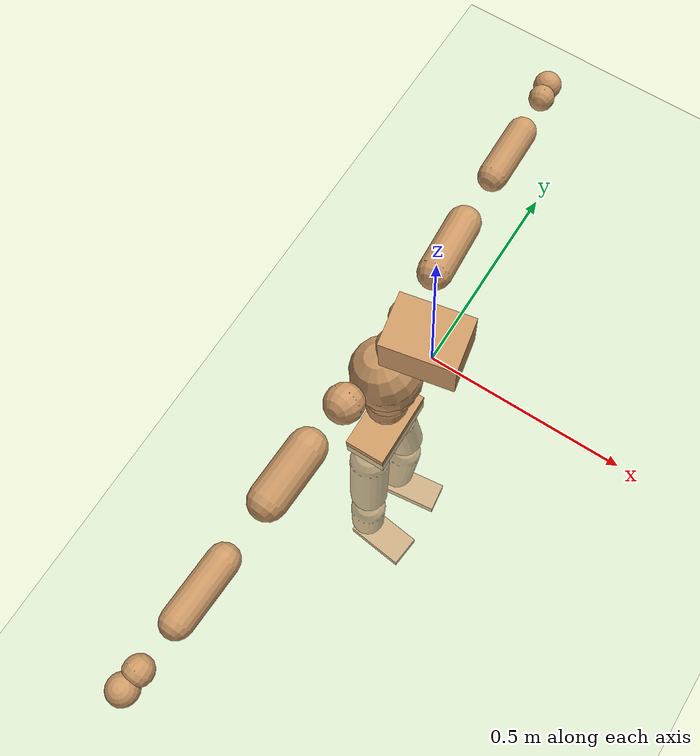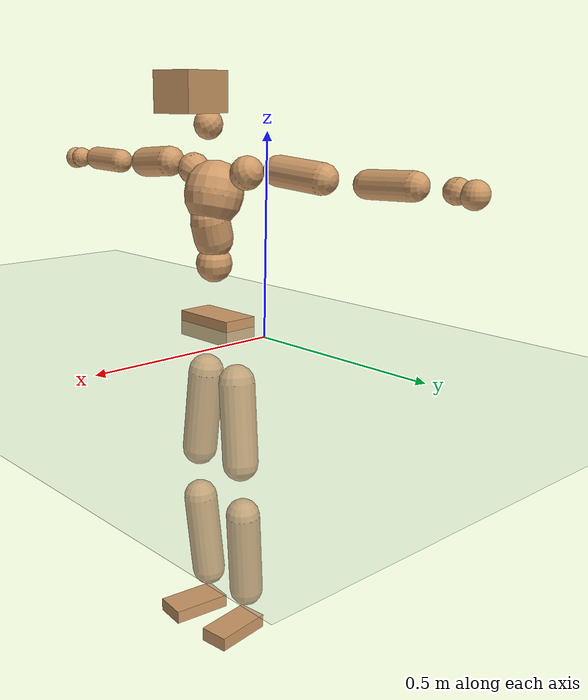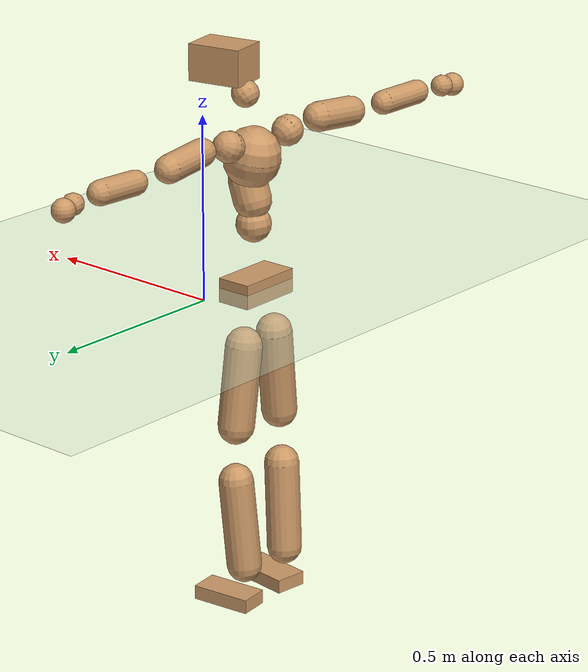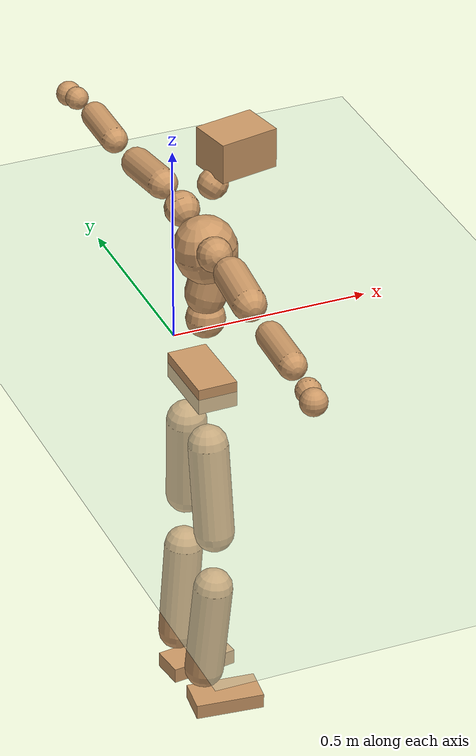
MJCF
<mujoco model="humanoid">
  <compiler coordinate="local" angle="radian"/>
  <default>
    <joint damping="0.0" armature="0.01" stiffness="0.0" limited="true"/>
    <geom conaffinity="1" condim="3" contype="7" margin="0.001" rgba="0.8 0.6 .4 1"/>
  </default>
  <asset>
    <texture type="skybox" builtin="gradient" rgb1=".4 .5 .6" rgb2="0 0 0" width="100" height="100"/>
    <texture builtin="flat" height="1278" mark="cross" markrgb="1 1 1" name="texgeom" random="0.01" rgb1="0.8 0.6 0.4" rgb2="0.8 0.6 0.4" type="cube" width="127"/>
    <texture builtin="checker" height="100" name="texplane" rgb1="0 0 0" rgb2="0.8 0.8 0.8" type="2d" width="100"/>
    <material name="MatPlane" reflectance="0.5" shininess="1" specular="1" texrepeat="60 60" texture="texplane"/>
    <material name="geom" texture="texgeom" texuniform="true"/>
  </asset>
  <worldbody>
    <light cutoff="100" diffuse="1 1 1" dir="-0 0 -1.3" directional="true" exponent="1" pos="0 0 1.3" specular=".1 .1 .1"/>
    <geom conaffinity="1" condim="3" name="floor" pos="0 0 0" rgba="0.8 0.9 0.8 1" size="100 100 .2" type="plane" material="MatPlane"/>
    <body name="Pelvis" pos="-0.0001 -0.1947 0.0031">
      <freejoint name="Pelvis"/>
      <geom type="box" contype="1" conaffinity="1" density="5359.374902" pos="-0.0074 -0.0001 -0.0113" size="0.0491 0.0921 0.0332" quat="1.0000 0.0000 0.0000 0.0088" name="Pelvis"/>
      <body name="L_Hip" pos="-0.0237 0.055 -0.0807">
        <joint name="L_Hip_x" type="hinge" pos="0 0 0" axis="1 0 0" stiffness="1600" damping="160" armature="0.02" range="-180.0000 180.0000"/>
        <joint name="L_Hip_y" type="hinge" pos="0 0 0" axis="0 1 0" stiffness="1600" damping="160" armature="0.02" range="-180.0000 180.0000"/>
        <joint name="L_Hip_z" type="hinge" pos="0 0 0" axis="0 0 1" stiffness="1600" damping="160" armature="0.02" range="-180.0000 180.0000"/>
        <geom type="capsule" contype="1" conaffinity="1" density="2040.816327" size="0.0496" fromto="0.0023 0.0086 -0.0791 0.0090 0.0329 -0.3041" name="L_Hip"/>
        <body name="L_Knee" pos="0.0113 0.0415 -0.3832">
          <joint name="L_Knee_x" type="hinge" pos="0 0 0" axis="1 0 0" stiffness="1600" damping="160" armature="0.02" range="-180.0000 180.0000"/>
          <joint name="L_Knee_y" type="hinge" pos="0 0 0" axis="0 1 0" stiffness="1600" damping="160" armature="0.02" range="-180.0000 180.0000"/>
          <joint name="L_Knee_z" type="hinge" pos="0 0 0" axis="0 0 1" stiffness="1600" damping="160" armature="0.02" range="-180.0000 180.0000"/>
          <geom type="capsule" contype="1" conaffinity="1" density="1234.567901" size="0.0475" fromto="-0.0069 -0.0027 -0.0772 -0.0285 -0.0112 -0.3210" name="L_Knee"/>
          <body name="L_Ankle" pos="-0.0353 -0.0139 -0.3982">
            <joint name="L_Ankle_x" type="hinge" pos="0 0 0" axis="1 0 0" stiffness="1600" damping="160" armature="0.02" range="-180.0000 180.0000"/>
            <joint name="L_Ankle_y" type="hinge" pos="0 0 0" axis="0 1 0" stiffness="1600" damping="160" armature="0.02" range="-180.0000 180.0000"/>
            <joint name="L_Ankle_z" type="hinge" pos="0 0 0" axis="0 0 1" stiffness="1600" damping="160" armature="0.02" range="-180.0000 180.0000"/>
            <geom type="box" contype="1" conaffinity="1" density="999.999977" pos="0.0598 0.0074 -0.0277" size="0.0843 0.0413 0.0195" quat="0.9981 0.0000 0.0000 0.0618" name="L_Ankle"/>
            <body name="L_Toe" pos="0.1196 0.0149 -0.0553">
              <joint name="L_Toe_x" type="hinge" pos="0 0 0" axis="1 0 0" stiffness="1000" damping="100" armature="0.02" range="-180.0000 180.0000"/>
              <joint name="L_Toe_y" type="hinge" pos="0 0 0" axis="0 1 0" stiffness="1000" damping="100" armature="0.02" range="-180.0000 180.0000"/>
              <joint name="L_Toe_z" type="hinge" pos="0 0 0" axis="0 0 1" stiffness="1000" damping="100" armature="0.02" range="-180.0000 180.0000"/>
              <geom type="box" contype="1" conaffinity="1" density="9129540.949962" pos="0.0000 0.0000 0.0293" size="0.0008 0.0021 0.0011" quat="0.9976 0.0000 0.0000 0.0689" name="L_Toe"/>
            </body>
          </body>
        </body>
      </body>
      <body name="R_Hip" pos="-0.0195 -0.0526 -0.0773">
        <joint name="R_Hip_x" type="hinge" pos="0 0 0" axis="1 0 0" stiffness="1600" damping="160" armature="0.02" range="-180.0000 180.0000"/>
        <joint name="R_Hip_y" type="hinge" pos="0 0 0" axis="0 1 0" stiffness="1600" damping="160" armature="0.02" range="-180.0000 180.0000"/>
        <joint name="R_Hip_z" type="hinge" pos="0 0 0" axis="0 0 1" stiffness="1600" damping="160" armature="0.02" range="-180.0000 180.0000"/>
        <geom type="capsule" contype="1" conaffinity="1" density="2040.816327" size="0.049" fromto="0.0014 -0.0089 -0.0785 0.0056 -0.0356 -0.3138" name="R_Hip"/>
        <body name="R_Knee" pos="0.007 -0.0445 -0.3923">
          <joint name="R_Knee_x" type="hinge" pos="0 0 0" axis="1 0 0" stiffness="1600" damping="160" armature="0.02" range="-180.0000 180.0000"/>
          <joint name="R_Knee_y" type="hinge" pos="0 0 0" axis="0 1 0" stiffness="1600" damping="160" armature="0.02" range="-180.0000 180.0000"/>
          <joint name="R_Knee_z" type="hinge" pos="0 0 0" axis="0 0 1" stiffness="1600" damping="160" armature="0.02" range="-180.0000 180.0000"/>
          <geom type="capsule" contype="1" conaffinity="1" density="1234.567901" size="0.0482" fromto="-0.0065 0.0036 -0.0779 -0.0267 0.0146 -0.3190" name="R_Knee"/>
          <body name="R_Ankle" pos="-0.0332 0.0181 -0.3969">
            <joint name="R_Ankle_x" type="hinge" pos="0 0 0" axis="1 0 0" stiffness="1600" damping="160" armature="0.02" range="-180.0000 180.0000"/>
            <joint name="R_Ankle_y" type="hinge" pos="0 0 0" axis="0 1 0" stiffness="1600" damping="160" armature="0.02" range="-180.0000 180.0000"/>
            <joint name="R_Ankle_z" type="hinge" pos="0 0 0" axis="0 0 1" stiffness="1600" damping="160" armature="0.02" range="-180.0000 180.0000"/>
            <geom type="box" contype="1" conaffinity="1" density="999.99994" pos="0.0612 -0.0068 -0.0223" size="0.0854 0.0456 0.0189" quat="0.9985 0.0000 0.0000 -0.0554" name="R_Ankle"/>
            <body name="R_Toe" pos="0.1223 -0.0136 -0.0447">
              <joint name="R_Toe_x" type="hinge" pos="0 0 0" axis="1 0 0" stiffness="1000" damping="100" armature="0.02" range="-180.0000 180.0000"/>
              <joint name="R_Toe_y" type="hinge" pos="0 0 0" axis="0 1 0" stiffness="1000" damping="100" armature="0.02" range="-180.0000 180.0000"/>
              <joint name="R_Toe_z" type="hinge" pos="0 0 0" axis="0 0 1" stiffness="1000" damping="100" armature="0.02" range="-180.0000 180.0000"/>
              <geom type="box" contype="1" conaffinity="1" density="8870257.658717" pos="0.0000 0.0000 0.0253" size="0.0008 0.0022 0.0011" quat="0.9989 0.0000 0.0000 -0.0465" name="R_Toe"/>
            </body>
          </body>
        </body>
      </body>
      <body name="Torso" pos="-0.0014 -0.0033 0.0905">
        <joint name="Torso_x" type="hinge" pos="0 0 0" axis="1 0 0" stiffness="2000" damping="200" armature="0.02" range="-180.0000 180.0000"/>
        <joint name="Torso_y" type="hinge" pos="0 0 0" axis="0 1 0" stiffness="2000" damping="200" armature="0.02" range="-180.0000 180.0000"/>
        <joint name="Torso_z" type="hinge" pos="0 0 0" axis="0 0 1" stiffness="2000" damping="200" armature="0.02" range="-180.0000 180.0000"/>
        <geom type="capsule" contype="1" conaffinity="1" density="2040.816327" size="0.0478" fromto="0.0028 0.0020 0.0655 0.0029 0.0021 0.0675" name="Torso"/>
        <body name="Spine" pos="0.0056 0.0041 0.1331">
          <joint name="Spine_x" type="hinge" pos="0 0 0" axis="1 0 0" stiffness="2000" damping="200" armature="0.02" range="-180.0000 180.0000"/>
          <joint name="Spine_y" type="hinge" pos="0 0 0" axis="0 1 0" stiffness="2000" damping="200" armature="0.02" range="-180.0000 180.0000"/>
          <joint name="Spine_z" type="hinge" pos="0 0 0" axis="0 0 1" stiffness="2000" damping="200" armature="0.02" range="-180.0000 180.0000"/>
          <geom type="capsule" contype="1" conaffinity="1" density="2040.816327" size="0.0515" fromto="0.0147 0.0023 0.0493 -0.0003 -0.0000 -0.0009" name="Spine"/>
          <body name="Chest" pos="0.0144 0.0022 0.0484">
            <joint name="Chest_x" type="hinge" pos="0 0 0" axis="1 0 0" stiffness="2000" damping="200" armature="0.02" range="-180.0000 180.0000"/>
            <joint name="Chest_y" type="hinge" pos="0 0 0" axis="0 1 0" stiffness="2000" damping="200" armature="0.02" range="-180.0000 180.0000"/>
            <joint name="Chest_z" type="hinge" pos="0 0 0" axis="0 0 1" stiffness="2000" damping="200" armature="0.02" range="-180.0000 180.0000"/>
            <geom type="capsule" contype="1" conaffinity="1" density="2040.816327" size="0.0764" fromto="-0.0169 -0.0010 0.0745 -0.0139 -0.0008 0.0612" name="Chest"/>
            <body name="Neck" pos="-0.0257 -0.0024 0.1988">
              <joint name="Neck_x" type="hinge" pos="0 0 0" axis="1 0 0" stiffness="1000" damping="100" armature="0.02" range="-180.0000 180.0000"/>
              <joint name="Neck_y" type="hinge" pos="0 0 0" axis="0 1 0" stiffness="1000" damping="100" armature="0.02" range="-180.0000 180.0000"/>
              <joint name="Neck_z" type="hinge" pos="0 0 0" axis="0 0 1" stiffness="1000" damping="100" armature="0.02" range="-180.0000 180.0000"/>
              <geom type="capsule" contype="1" conaffinity="1" density="1000" size="0.0366" fromto="0.0303 0.0052 0.0372 0.0316 0.0054 0.0388" name="Neck"/>
              <body name="Head" pos="0.0619 0.0107 0.076">
                <joint name="Head_x" type="hinge" pos="0 0 0" axis="1 0 0" stiffness="1000" damping="100" armature="0.02" range="-180.0000 180.0000"/>
                <joint name="Head_y" type="hinge" pos="0 0 0" axis="0 1 0" stiffness="1000" damping="100" armature="0.02" range="-180.0000 180.0000"/>
                <joint name="Head_z" type="hinge" pos="0 0 0" axis="0 0 1" stiffness="1000" damping="100" armature="0.02" range="-180.0000 180.0000"/>
                <geom type="box" contype="1" conaffinity="1" density="2250.000222" pos="0.0320 0.0063 0.0390" size="0.074 0.0548 0.0495" quat="0.9952 0.0000 0.0000 0.0977" name="Head"/>
              </body>
            </body>
            <body name="L_Thorax" pos="-0.0304 0.0659 0.1061">
              <joint name="L_Thorax_x" type="hinge" pos="0 0 0" axis="1 0 0" stiffness="1000" damping="100" armature="0.02" range="-180.0000 180.0000"/>
              <joint name="L_Thorax_y" type="hinge" pos="0 0 0" axis="0 1 0" stiffness="1000" damping="100" armature="0.02" range="-180.0000 180.0000"/>
              <joint name="L_Thorax_z" type="hinge" pos="0 0 0" axis="0 0 1" stiffness="1000" damping="100" armature="0.02" range="-180.0000 180.0000"/>
              <geom type="capsule" contype="1" conaffinity="1" density="1000" size="0.0424" fromto="0.0003 0.0402 0.0166 0.0003 0.0421 0.0174" name="L_Thorax"/>
              <body name="L_Shoulder" pos="0.0005 0.0823 0.034">
                <joint name="L_Shoulder_x" type="hinge" pos="0 0 0" axis="1 0 0" stiffness="1000" damping="100" armature="0.02" range="-720.0000 720.0000"/>
                <joint name="L_Shoulder_y" type="hinge" pos="0 0 0" axis="0 1 0" stiffness="1000" damping="100" armature="0.02" range="-720.0000 720.0000"/>
                <joint name="L_Shoulder_z" type="hinge" pos="0 0 0" axis="0 0 1" stiffness="1000" damping="100" armature="0.02" range="-720.0000 720.0000"/>
                <geom type="capsule" contype="1" conaffinity="1" density="1000" size="0.0374" fromto="-0.0055 0.0670 -0.0053 -0.0165 0.2006 -0.0158" name="L_Shoulder"/>
                <body name="L_Elbow" pos="-0.0221 0.2676 -0.0211">
                  <joint name="L_Elbow_x" type="hinge" pos="0 0 0" axis="1 0 0" stiffness="1000" damping="100" armature="0.02" range="-720.0000 720.0000"/>
                  <joint name="L_Elbow_y" type="hinge" pos="0 0 0" axis="0 1 0" stiffness="1000" damping="100" armature="0.02" range="-720.0000 720.0000"/>
                  <joint name="L_Elbow_z" type="hinge" pos="0 0 0" axis="0 0 1" stiffness="1000" damping="100" armature="0.02" range="-720.0000 720.0000"/>
                  <geom type="capsule" contype="1" conaffinity="1" density="1000" size="0.0326" fromto="-0.0009 0.0625 0.0024 -0.0027 0.1876 0.0071" name="L_Elbow"/>
                  <body name="L_Wrist" pos="-0.0036 0.2502 0.0095">
                    <joint name="L_Wrist_x" type="hinge" pos="0 0 0" axis="1 0 0" stiffness="600" damping="60" armature="0.02" range="-180.0000 180.0000"/>
                    <joint name="L_Wrist_y" type="hinge" pos="0 0 0" axis="0 1 0" stiffness="600" damping="60" armature="0.02" range="-180.0000 180.0000"/>
                    <joint name="L_Wrist_z" type="hinge" pos="0 0 0" axis="0 0 1" stiffness="600" damping="60" armature="0.02" range="-180.0000 180.0000"/>
                    <geom type="capsule" contype="1" conaffinity="1" density="1000" size="0.0282" fromto="-0.0064 0.0374 -0.0047 -0.0067 0.0394 -0.0050" name="L_Wrist"/>
                    <body name="L_Hand" pos="-0.0131 0.0769 -0.0097">
                      <joint name="L_Hand_x" type="hinge" pos="0 0 0" axis="1 0 0" stiffness="600" damping="60" armature="0.02" range="-180.0000 180.0000"/>
                      <joint name="L_Hand_y" type="hinge" pos="0 0 0" axis="0 1 0" stiffness="600" damping="60" armature="0.02" range="-180.0000 180.0000"/>
                      <joint name="L_Hand_z" type="hinge" pos="0 0 0" axis="0 0 1" stiffness="600" damping="60" armature="0.02" range="-180.0000 180.0000"/>
                      <geom type="sphere" contype="1" conaffinity="1" density="1000" size="0.0307" pos="0.0000 0.0000 0.0000" name="L_Hand"/>
                    </body>
                  </body>
                </body>
              </body>
            </body>
            <body name="R_Thorax" pos="-0.0361 -0.0689 0.1022">
              <joint name="R_Thorax_x" type="hinge" pos="0 0 0" axis="1 0 0" stiffness="1000" damping="100" armature="0.02" range="-180.0000 180.0000"/>
              <joint name="R_Thorax_y" type="hinge" pos="0 0 0" axis="0 1 0" stiffness="1000" damping="100" armature="0.02" range="-180.0000 180.0000"/>
              <joint name="R_Thorax_z" type="hinge" pos="0 0 0" axis="0 0 1" stiffness="1000" damping="100" armature="0.02" range="-180.0000 180.0000"/>
              <geom type="capsule" contype="1" conaffinity="1" density="1000" size="0.0419" fromto="-0.0035 -0.0432 0.0179 -0.0037 -0.0450 0.0186" name="R_Thorax"/>
              <body name="R_Shoulder" pos="-0.0072 -0.0882 0.0365">
                <joint name="R_Shoulder_x" type="hinge" pos="0 0 0" axis="1 0 0" stiffness="1000" damping="100" armature="0.02" range="-720.0000 720.0000"/>
                <joint name="R_Shoulder_y" type="hinge" pos="0 0 0" axis="0 1 0" stiffness="1000" damping="100" armature="0.02" range="-720.0000 720.0000"/>
                <joint name="R_Shoulder_z" type="hinge" pos="0 0 0" axis="0 0 1" stiffness="1000" damping="100" armature="0.02" range="-720.0000 720.0000"/>
                <geom type="capsule" contype="1" conaffinity="1" density="1000" size="0.0405" fromto="-0.0039 -0.0701 -0.0055 -0.0109 -0.1943 -0.0151" name="R_Shoulder"/>
                <body name="R_Elbow" pos="-0.0148 -0.2644 -0.0206">
                  <joint name="R_Elbow_x" type="hinge" pos="0 0 0" axis="1 0 0" stiffness="1000" damping="100" armature="0.02" range="-720.0000 720.0000"/>
                  <joint name="R_Elbow_y" type="hinge" pos="0 0 0" axis="0 1 0" stiffness="1000" damping="100" armature="0.02" range="-720.0000 720.0000"/>
                  <joint name="R_Elbow_z" type="hinge" pos="0 0 0" axis="0 0 1" stiffness="1000" damping="100" armature="0.02" range="-720.0000 720.0000"/>
                  <geom type="capsule" contype="1" conaffinity="1" density="1000" size="0.0334" fromto="-0.0025 -0.0633 0.0007 -0.0080 -0.1994 0.0022" name="R_Elbow"/>
                  <body name="R_Wrist" pos="-0.0106 -0.2627 0.0029">
                    <joint name="R_Wrist_x" type="hinge" pos="0 0 0" axis="1 0 0" stiffness="600" damping="60" armature="0.02" range="-180.0000 180.0000"/>
                    <joint name="R_Wrist_y" type="hinge" pos="0 0 0" axis="0 1 0" stiffness="600" damping="60" armature="0.02" range="-180.0000 180.0000"/>
                    <joint name="R_Wrist_z" type="hinge" pos="0 0 0" axis="0 0 1" stiffness="600" damping="60" armature="0.02" range="-180.0000 180.0000"/>
                    <geom type="capsule" contype="1" conaffinity="1" density="1000" size="0.0299" fromto="-0.0050 -0.0394 -0.0037 -0.0052 -0.0414 -0.0039" name="R_Wrist"/>
                    <body name="R_Hand" pos="-0.0102 -0.0808 -0.0075">
                      <joint name="R_Hand_x" type="hinge" pos="0 0 0" axis="1 0 0" stiffness="600" damping="60" armature="0.02" range="-180.0000 180.0000"/>
                      <joint name="R_Hand_y" type="hinge" pos="0 0 0" axis="0 1 0" stiffness="600" damping="60" armature="0.02" range="-180.0000 180.0000"/>
                      <joint name="R_Hand_z" type="hinge" pos="0 0 0" axis="0 0 1" stiffness="600" damping="60" armature="0.02" range="-180.0000 180.0000"/>
                      <geom type="sphere" contype="1" conaffinity="1" density="1000" size="0.0321" pos="0.0000 0.0000 0.0000" name="R_Hand"/>
                    </body>
                  </body>
                </body>
              </body>
            </body>
          </body>
        </body>
      </body>
    </body>
  </worldbody>
  <actuator>
    <motor name="L_Hip_x" joint="L_Hip_x" gear="500"/>
    <motor name="L_Hip_y" joint="L_Hip_y" gear="500"/>
    <motor name="L_Hip_z" joint="L_Hip_z" gear="500"/>
    <motor name="L_Knee_x" joint="L_Knee_x" gear="500"/>
    <motor name="L_Knee_y" joint="L_Knee_y" gear="500"/>
    <motor name="L_Knee_z" joint="L_Knee_z" gear="500"/>
    <motor name="L_Ankle_x" joint="L_Ankle_x" gear="500"/>
    <motor name="L_Ankle_y" joint="L_Ankle_y" gear="500"/>
    <motor name="L_Ankle_z" joint="L_Ankle_z" gear="500"/>
    <motor name="L_Toe_x" joint="L_Toe_x" gear="500"/>
    <motor name="L_Toe_y" joint="L_Toe_y" gear="500"/>
    <motor name="L_Toe_z" joint="L_Toe_z" gear="500"/>
    <motor name="R_Hip_x" joint="R_Hip_x" gear="500"/>
    <motor name="R_Hip_y" joint="R_Hip_y" gear="500"/>
    <motor name="R_Hip_z" joint="R_Hip_z" gear="500"/>
    <motor name="R_Knee_x" joint="R_Knee_x" gear="500"/>
    <motor name="R_Knee_y" joint="R_Knee_y" gear="500"/>
    <motor name="R_Knee_z" joint="R_Knee_z" gear="500"/>
    <motor name="R_Ankle_x" joint="R_Ankle_x" gear="500"/>
    <motor name="R_Ankle_y" joint="R_Ankle_y" gear="500"/>
    <motor name="R_Ankle_z" joint="R_Ankle_z" gear="500"/>
    <motor name="R_Toe_x" joint="R_Toe_x" gear="500"/>
    <motor name="R_Toe_y" joint="R_Toe_y" gear="500"/>
    <motor name="R_Toe_z" joint="R_Toe_z" gear="500"/>
    <motor name="Torso_x" joint="Torso_x" gear="500"/>
    <motor name="Torso_y" joint="Torso_y" gear="500"/>
    <motor name="Torso_z" joint="Torso_z" gear="500"/>
    <motor name="Spine_x" joint="Spine_x" gear="500"/>
    <motor name="Spine_y" joint="Spine_y" gear="500"/>
    <motor name="Spine_z" joint="Spine_z" gear="500"/>
    <motor name="Chest_x" joint="Chest_x" gear="500"/>
    <motor name="Chest_y" joint="Chest_y" gear="500"/>
    <motor name="Chest_z" joint="Chest_z" gear="500"/>
    <motor name="Neck_x" joint="Neck_x" gear="500"/>
    <motor name="Neck_y" joint="Neck_y" gear="500"/>
    <motor name="Neck_z" joint="Neck_z" gear="500"/>
    <motor name="Head_x" joint="Head_x" gear="500"/>
    <motor name="Head_y" joint="Head_y" gear="500"/>
    <motor name="Head_z" joint="Head_z" gear="500"/>
    <motor name="L_Thorax_x" joint="L_Thorax_x" gear="500"/>
    <motor name="L_Thorax_y" joint="L_Thorax_y" gear="500"/>
    <motor name="L_Thorax_z" joint="L_Thorax_z" gear="500"/>
    <motor name="L_Shoulder_x" joint="L_Shoulder_x" gear="500"/>
    <motor name="L_Shoulder_y" joint="L_Shoulder_y" gear="500"/>
    <motor name="L_Shoulder_z" joint="L_Shoulder_z" gear="500"/>
    <motor name="L_Elbow_x" joint="L_Elbow_x" gear="500"/>
    <motor name="L_Elbow_y" joint="L_Elbow_y" gear="500"/>
    <motor name="L_Elbow_z" joint="L_Elbow_z" gear="500"/>
    <motor name="L_Wrist_x" joint="L_Wrist_x" gear="500"/>
    <motor name="L_Wrist_y" joint="L_Wrist_y" gear="500"/>
    <motor name="L_Wrist_z" joint="L_Wrist_z" gear="500"/>
    <motor name="L_Hand_x" joint="L_Hand_x" gear="500"/>
    <motor name="L_Hand_y" joint="L_Hand_y" gear="500"/>
    <motor name="L_Hand_z" joint="L_Hand_z" gear="500"/>
    <motor name="R_Thorax_x" joint="R_Thorax_x" gear="500"/>
    <motor name="R_Thorax_y" joint="R_Thorax_y" gear="500"/>
    <motor name="R_Thorax_z" joint="R_Thorax_z" gear="500"/>
    <motor name="R_Shoulder_x" joint="R_Shoulder_x" gear="500"/>
    <motor name="R_Shoulder_y" joint="R_Shoulder_y" gear="500"/>
    <motor name="R_Shoulder_z" joint="R_Shoulder_z" gear="500"/>
    <motor name="R_Elbow_x" joint="R_Elbow_x" gear="500"/>
    <motor name="R_Elbow_y" joint="R_Elbow_y" gear="500"/>
    <motor name="R_Elbow_z" joint="R_Elbow_z" gear="500"/>
    <motor name="R_Wrist_x" joint="R_Wrist_x" gear="500"/>
    <motor name="R_Wrist_y" joint="R_Wrist_y" gear="500"/>
    <motor name="R_Wrist_z" joint="R_Wrist_z" gear="500"/>
    <motor name="R_Hand_x" joint="R_Hand_x" gear="500"/>
    <motor name="R_Hand_y" joint="R_Hand_y" gear="500"/>
    <motor name="R_Hand_z" joint="R_Hand_z" gear="500"/>
  </actuator>
  <contact>
    <exclude body1="Torso" body2="Chest"/>
    <exclude body1="Head" body2="Chest"/>
    <exclude body1="R_Knee" body2="R_Toe"/>
    <exclude body1="R_Knee" body2="L_Ankle"/>
    <exclude body1="R_Knee" body2="L_Toe"/>
    <exclude body1="L_Knee" body2="L_Toe"/>
    <exclude body1="L_Knee" body2="R_Ankle"/>
    <exclude body1="L_Knee" body2="R_Toe"/>
    <exclude body1="L_Shoulder" body2="Chest"/>
    <exclude body1="R_Shoulder" body2="Chest"/>
  </contact>
  <sensor/>
  <size njmax="700" nconmax="700"/>
</mujoco>
